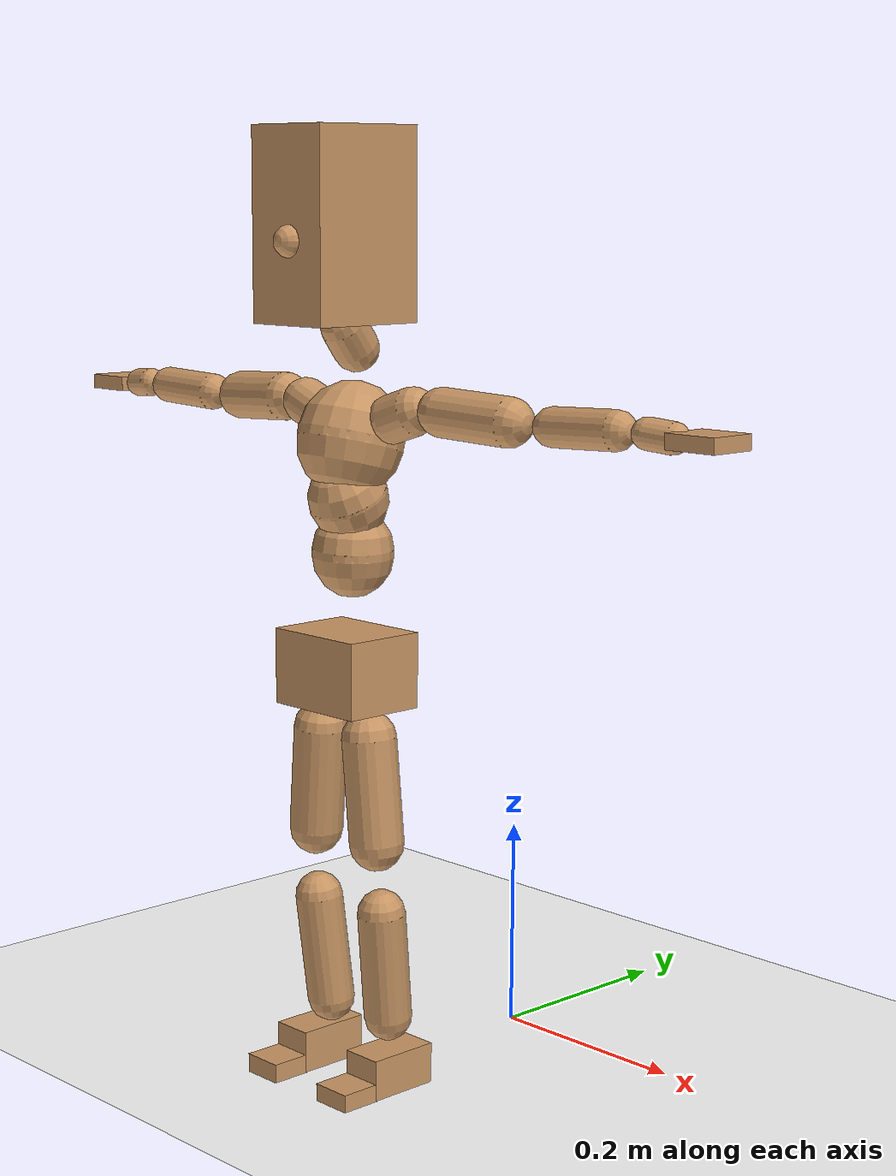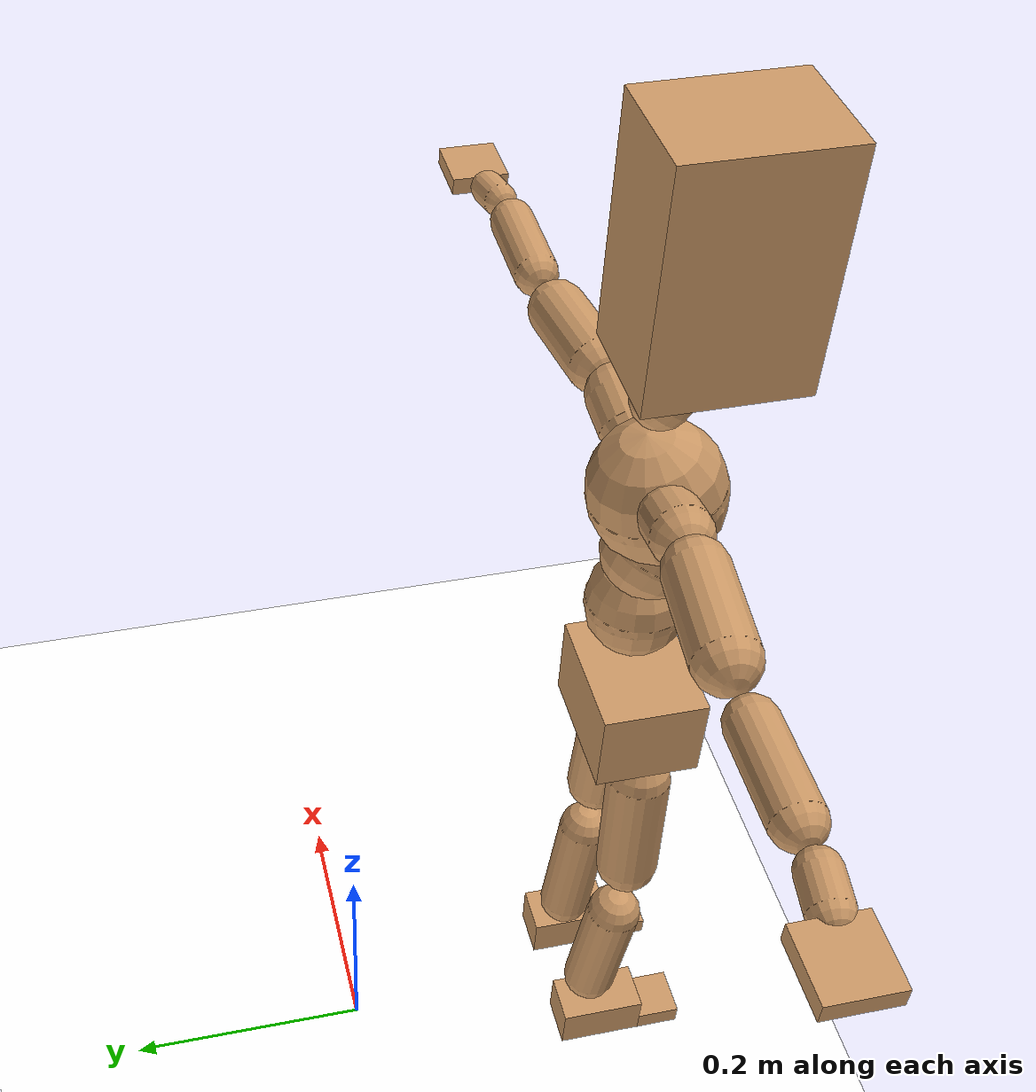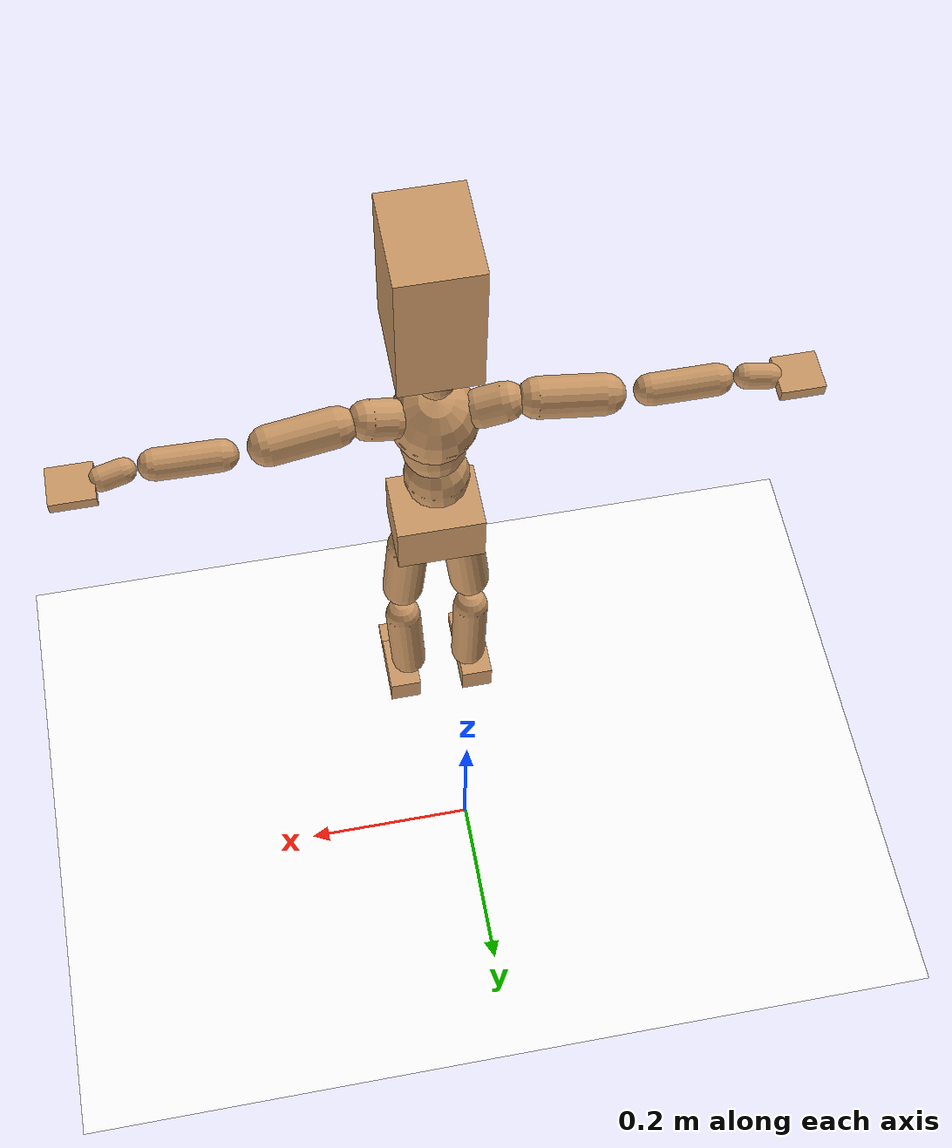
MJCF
<mujoco model="humanoid">
  <option integrator="implicitfast" />

  <visual>
    <global offwidth="1280" offheight="960" />
    <headlight active="1" ambient="0.34 0.34 0.34" diffuse="0.5 0.5 0.5" />
  </visual>

  <default>
    <joint damping="2" stiffness="2" armature="0.01" limited="true" solimplimit="0 .99 .01" />
    <geom condim="1" friction="0.7 0.005 0.0001" solimp=".99 .99 .003" solref="0.015 1" margin="0.001" rgba="0.8 0.6 .4 1" />
    <default class="smplcontact">
      <geom condim="3" friction="1. 0.005 0.0001" solref="0.015 1" solimp="0.98 0.98 0.001" priority="1" />
    </default>
    <default class="stiff_medium">
      <joint stiffness="10" />
    </default>
    <default class="stiff_medium_higher">
      <joint stiffness="50" />
    </default>
    <default class="stiff_high">
      <joint stiffness="100" />
    </default>
  </default>

  <asset>
    <texture type="skybox" builtin="gradient" rgb1="0.99 0.99 0.99" rgb2="0.608 0.828 0.892" width="100" />
    <texture builtin="flat" height="1278" mark="cross" markrgb="1 1 1" name="texgeom" random="0.01" rgb1="0.8 0.6 0.4" rgb2="0.8 0.6 0.4" type="cube" width="127" />
    <texture name="texplane" type="2d" builtin="checker" markrgb="1 1 1" rgb1="0.756 0.772 0.76" rgb2="0.6 0.6 0.6" width="100" height="100" />
    <material name="MatPlane" reflectance="0.5" texture="texplane" texrepeat="1 1" texuniform="true" />
    <material name="geom" texture="texgeom" texuniform="true" />
  </asset>

  <worldbody>
    <light name="tracking_light" pos="0 0 7" dir="0 0 -1" directional="true" cutoff="100" exponent="1" diffuse="1 1 1" specular="0.1 0.1 0.1" mode="trackcom" />
    <camera name="back" pos="0 3 2.4" xyaxes="-1 0 0 0 -1 2" mode="trackcom" />
    <camera name="side" pos="-3 0 2.4" xyaxes="0 -1 0 1 0 2" mode="trackcom" />
    <camera name="front_side" pos="-2.8 -2.8 0.8" xyaxes="0.5 -0.5 0 0.1 0.1 1" mode="trackcom" />
    <geom condim="3" name="floor" pos="0 0 0" rgba="1 1 1 1" size="100 100 .2" type="plane" material="MatPlane" />
    <body name="Pelvis" pos="-0.0018 -0.2233 0.401666" euler="90 0 0">
      <site name="Pelvis" size="0.01" />
      <freejoint name="Pelvis" />
      <geom type="box" pos="-0.0000 -0.0121 -0.0055" size="0.0514157 0.034726 0.0399205" quat="1.0000 0.0000 0.0000 0.0000" density="3165.830099" name="Pelvis" />
      <body name="L_Hip" pos="0.0298351 -0.0392364 -0.00291912">
        <joint name="L_Hip_x" type="hinge" pos="0 0 0" axis="1 0 0" stiffness="10" range="-160.0 22.92" class="stiff_medium" damping="15" />
        <joint name="L_Hip_y" type="hinge" pos="0 0 0" axis="0 1 0" stiffness="10" range="-70.0 70.0" class="stiff_medium" damping="10" />
        <joint name="L_Hip_z" type="hinge" pos="0 0 0" axis="0 0 1" stiffness="10" range="-28.65 90.0" class="stiff_medium" damping="10" />
        <geom type="capsule" density="2040.816327" fromto="0.00296205 -0.0321962 -0.000386354 0.0117623 -0.128871 -0.00154542" size="0.0251391" name="L_Hip" />
        <body name="L_Knee" pos="0.0147244 -0.161067 -0.00193177">
          <joint name="L_Knee_x" type="hinge" pos="0 0 0" axis="1 0 0" range="-5.16 171.89" damping="8" />
          <joint name="L_Knee_y" type="hinge" pos="0 0 0" axis="0 1 0" range="-4.58 6.88" damping="8" />
          <joint name="L_Knee_z" type="hinge" pos="0 0 0" axis="0 0 1" range="-6.88 4.58" damping="8" />
          <geom type="capsule" density="1234.567901" fromto="-0.00115906 -0.0341709 -0.00373476 -0.00467918 -0.136684 -0.0150249" size="0.0221142" name="L_Knee" />
          <body name="L_Ankle" pos="-0.00583824 -0.170855 -0.0187597">
            <joint name="L_Ankle_x" type="hinge" pos="0 0 0" axis="1 0 0" range="-45.84 45.84" class="stiff_medium" damping="6" />
            <joint name="L_Ankle_y" type="hinge" pos="0 0 0" axis="0 1 0" range="-74.48 22.92" class="stiff_medium" damping="3" />
            <joint name="L_Ankle_z" type="hinge" pos="0 0 0" axis="0 0 1" range="-4.58 4.58" class="stiff_medium" damping="6" />
            <geom type="box" pos="0.0100023 -0.0102599 0.0103886" size="0.0197434 0.0189667 0.0347451" quat="1.0000 0.0000 0.0000 0.0000" density="449.071558" name="L_Ankle" class="smplcontact" />
            <body name="L_Toe" pos="0.0113331 -0.023954 0.0512134">
              <joint name="L_Toe_x" type="hinge" pos="0 0 0" axis="1 0 0" range="-91.67 22.92" />
              <joint name="L_Toe_y" type="hinge" pos="0 0 0" axis="0 1 0" range="-4.58 4.58" />
              <joint name="L_Toe_z" type="hinge" pos="0 0 0" axis="0 0 1" range="-4.58 4.58" />
              <geom type="box" pos="-0.00128785 0.00236105 0.0106462" size="0.019539 0.00817531 0.0202748" quat="1.0000 0.0000 0.0000 0.0000" density="423.206892" name="L_Toe" class="smplcontact" />
            </body>
          </body>
        </body>
      </body>
      <body name="R_Hip" pos="-0.0290624 -0.0388501 -0.00184592">
        <joint name="R_Hip_x" type="hinge" pos="0 0 0" axis="1 0 0" stiffness="10" range="-160.0 22.92" class="stiff_medium" damping="15" />
        <joint name="R_Hip_y" type="hinge" pos="0 0 0" axis="0 1 0" stiffness="10" range="-70.0 70.0" class="stiff_medium" damping="10" />
        <joint name="R_Hip_z" type="hinge" pos="0 0 0" axis="0 0 1" stiffness="10" range="-90.0 28.65" class="stiff_medium" damping="10" />
        <geom type="capsule" density="2040.816327" fromto="-0.00330548 -0.0328401 -0.000772709 -0.0131361 -0.131403 -0.00304791" size="0.0247712" name="R_Hip" />
        <body name="R_Knee" pos="-0.0164415 -0.164244 -0.00382062">
          <joint name="R_Knee_x" type="hinge" pos="0 0 0" axis="1 0 0" range="-5.16 171.89" damping="8" />
          <joint name="R_Knee_y" type="hinge" pos="0 0 0" axis="0 1 0" range="-6.88 4.58" damping="8" />
          <joint name="R_Knee_z" type="hinge" pos="0 0 0" axis="0 0 1" range="-4.58 6.88" damping="8" />
          <geom type="capsule" density="1234.567901" fromto="0.0013737 -0.0342138 -0.0036489 0.00540896 -0.136812 -0.0145098" size="0.0221142" name="R_Knee" />
          <body name="R_Ankle" pos="0.00678267 -0.171026 -0.0181587">
            <joint name="R_Ankle_x" type="hinge" pos="0 0 0" axis="1 0 0" range="-45.84 45.84" class="stiff_medium" damping="6" />
            <joint name="R_Ankle_y" type="hinge" pos="0 0 0" axis="0 1 0" range="-22.92 74.48" class="stiff_medium" damping="3" />
            <joint name="R_Ankle_z" type="hinge" pos="0 0 0" axis="0 0 1" range="-4.58 4.58" class="stiff_medium" damping="6" />
            <geom type="box" pos="-0.00910079 -0.00746952 0.0109896" size="0.0197434 0.019539 0.0353582" quat="1.0000 0.0000 0.0000 0.0000" density="434.700981" name="R_Ankle" class="smplcontact" />
            <body name="R_Toe" pos="-0.0109038 -0.0206485 0.0529306">
              <joint name="R_Toe_x" type="hinge" pos="0 0 0" axis="1 0 0" range="-91.67 22.92" />
              <joint name="R_Toe_y" type="hinge" pos="0 0 0" axis="0 1 0" range="-4.58 4.58" />
              <joint name="R_Toe_z" type="hinge" pos="0 0 0" axis="0 0 1" range="-4.58 4.58" />
              <geom type="box" pos="0.00180299 0.00193177 0.00974472" size="0.0195799 0.00882933 0.0201521" quat="1.0000 0.0000 0.0000 0.0000" density="407.384095" name="R_Toe" class="smplcontact" />
            </body>
          </body>
        </body>
      </body>
      <body name="Torso" pos="-0.00131215 0.0572096 -0.0140137">
        <joint name="Torso_x" type="hinge" pos="0 0 0" axis="1 0 0" range="-25.78 57.3" class="stiff_medium" damping="15" />
        <joint name="Torso_y" type="hinge" pos="0 0 0" axis="0 1 0" range="-57.3 57.3" class="stiff_high" damping="20" />
        <joint name="Torso_z" type="hinge" pos="0 0 0" axis="0 0 1" range="-34.38 34.38" class="stiff_high" damping="20" />
        <geom type="capsule" density="2040.816327" fromto="0.00131215 0.0319114 0.000262429 0.00157458 0.038997 0.000314915" size="0.0369866" name="Torso" />
        <body name="Spine" pos="0.00288672 0.0709608 0.000577344">
          <joint name="Spine_x" type="hinge" pos="0 0 0" axis="1 0 0" stiffness="10" range="-25.78 57.3" class="stiff_medium" damping="15" />
          <joint name="Spine_y" type="hinge" pos="0 0 0" axis="0 1 0" stiffness="10" range="-57.3 57.3" class="stiff_high" damping="8" />
          <joint name="Spine_z" type="hinge" pos="0 0 0" axis="0 0 1" stiffness="20" range="-34.38 34.38" class="stiff_high" damping="12" />
          <geom type="capsule" density="2040.816327" fromto="0.000367401 0.0124916 0.00598339 0.000419887 0.0152734 0.00734802" size="0.0363132" name="Spine" />
          <body name="Chest" pos="0.000787288 0.027765 0.0133314">
            <joint name="Chest_x" type="hinge" pos="0 0 0" axis="1 0 0" stiffness="10" range="-25.78 57.3" class="stiff_medium" damping="15" />
            <joint name="Chest_y" type="hinge" pos="0 0 0" axis="0 1 0" stiffness="10" range="-57.3 57.3" class="stiff_high" damping="8" />
            <joint name="Chest_z" type="hinge" pos="0 0 0" axis="0 0 1" stiffness="20" range="-34.38 34.38" class="stiff_high" damping="12" />
            <geom type="capsule" density="2040.816327" fromto="-0.000472373 0.0357953 -0.00908005 -0.000524858 0.0437207 -0.011127" size="0.0481932" name="Chest" />
            <body name="Neck" pos="-0.0014696 0.112267 -0.0225164">
              <joint name="Neck_x" type="hinge" pos="0 0 0" axis="1 0 0" range="-28.65 57.3" class="stiff_medium_higher" damping="10" />
              <joint name="Neck_y" type="hinge" pos="0 0 0" axis="0 1 0" range="-40.11 40.11" class="stiff_medium_higher" damping="10" />
              <joint name="Neck_z" type="hinge" pos="0 0 0" axis="0 0 1" range="-40.11 40.11" class="stiff_medium_higher" damping="10" />
              <geom type="capsule" density="1000" fromto="0.000524858 0.00682316 0.00540604 0.00215192 0.0272926 0.0215717" size="0.0209703" name="Neck" />
              <body name="Head" pos="0.0039195 0.0489937 0.0386674">
                <joint name="Head_x" type="hinge" pos="0 0 0" axis="1 0 0" range="-28.65 57.3" class="stiff_medium_higher" damping="2" />
                <joint name="Head_y" type="hinge" pos="0 0 0" axis="0 1 0" range="-40.11 40.11" class="stiff_medium_higher" damping="2" />
                <joint name="Head_z" type="hinge" pos="0 0 0" axis="0 0 1" range="-40.11 40.11" class="stiff_medium_higher" damping="2" />
                <geom type="box" pos="-0.00316575 0.0660285 -0.0087435" size="0.0446205 0.0849703 0.0559597" quat="1.0000 0.0000 0.0000 0.0000" density="1018.069894" name="Head" />
                <geom type="capsule" name="nose" size="0.0147262 0.00736312" pos="0 0.0527625 0.0376875" quat="1 0 0 0" mass="0" contype="0" conaffinity="0" />
              </body>
            </body>
            <body name="L_Thorax" pos="0.0367615 0.0567751 -0.0159082">
              <joint name="L_Thorax_x" type="hinge" pos="0 0 0" axis="1 0 0" range="-10.89 4.58" class="stiff_medium_higher" damping="20" />
              <joint name="L_Thorax_y" type="hinge" pos="0 0 0" axis="0 1 0" range="-28.65 17.19" class="stiff_medium_higher" damping="20" />
              <joint name="L_Thorax_z" type="hinge" pos="0 0 0" axis="0 0 1" range="-31.51 40.11" class="stiff_medium_higher" damping="20" />
              <geom type="capsule" density="1000" fromto="0.0084906 0.00284575 -0.00083973 0.0339624 0.011383 -0.00331227" size="0.0219902" name="L_Thorax" />
              <body name="L_Shoulder" pos="0.042453 0.0142288 -0.004152">
                <joint name="L_Shoulder_x" type="hinge" pos="0 0 0" axis="1 0 0" range="-97.4 97.4" class="stiff_medium" damping="6" />
                <joint name="L_Shoulder_y" type="hinge" pos="0 0 0" axis="0 1 0" range="-108.86 80.21" class="stiff_medium" damping="6" />
                <joint name="L_Shoulder_z" type="hinge" pos="0 0 0" axis="0 0 1" range="-97.4 85.94" class="stiff_medium" damping="6" />
                <geom type="capsule" density="1000" fromto="0.0242122 -0.00121294 -0.00256584 0.0968955 -0.00475847 -0.0102634" size="0.0218213" name="L_Shoulder" />
                <body name="L_Elbow" pos="0.121108 -0.00597141 -0.0128292">
                  <joint name="L_Elbow_x" type="hinge" pos="0 0 0" axis="1 0 0" range="-17.19 4.58" damping="5" />
                  <joint name="L_Elbow_y" type="hinge" pos="0 0 0" axis="0 1 0" range="-180.0 17.19" damping="5" />
                  <joint name="L_Elbow_z" type="hinge" pos="0 0 0" axis="0 0 1" range="-100.84 4.58" damping="5" />
                  <geom type="capsule" density="1000" fromto="0.0232325 0.00083973 -9.33033e-05 0.0930234 0.00335892 -0.000419865" size="0.0170941" name="L_Elbow" />
                  <body name="L_Wrist" pos="0.116256 0.00419865 -0.00055982">
                    <joint name="L_Wrist_x" type="hinge" pos="0 0 0" axis="1 0 0" range="-180.0 22.92" />
                    <joint name="L_Wrist_y" type="hinge" pos="0 0 0" axis="0 1 0" range="-17.19 17.19" />
                    <joint name="L_Wrist_z" type="hinge" pos="0 0 0" axis="0 0 1" range="-22.92 22.92" />
                    <geom type="capsule" density="1000" fromto="0.00783748 -0.000746426 -0.00139955 0.0313499 -0.00303236 -0.0055982" size="0.013422" name="L_Wrist" class="smplcontact" />
                    <body name="L_Hand" pos="0.0391874 -0.00382544 -0.0069511">
                      <joint name="L_Hand_x" type="hinge" pos="0 0 0" axis="1 0 0" range="-17.19 17.19" />
                      <joint name="L_Hand_y" type="hinge" pos="0 0 0" axis="0 1 0" range="-51.57 51.57" />
                      <joint name="L_Hand_z" type="hinge" pos="0 0 0" axis="0 0 1" range="-91.67 91.67" />
                      <geom type="box" pos="0.0229993 0.000466516 -0.0027058" size="0.0246915 0.0066688 0.0227077" quat="1.0000 0.0000 0.0000 0.0000" density="400.552564" name="L_Hand" class="smplcontact" />
                    </body>
                  </body>
                </body>
              </body>
            </body>
            <body name="R_Thorax" pos="-0.038161 0.0554222 -0.0180075">
              <joint name="R_Thorax_x" type="hinge" pos="0 0 0" axis="1 0 0" range="-10.89 4.58" class="stiff_medium_higher" damping="20" />
              <joint name="R_Thorax_y" type="hinge" pos="0 0 0" axis="0 1 0" range="-17.19 28.65" class="stiff_medium_higher" damping="20" />
              <joint name="R_Thorax_z" type="hinge" pos="0 0 0" axis="0 0 1" range="-40.11 31.51" class="stiff_medium_higher" damping="20" />
              <geom type="capsule" density="1000" fromto="-0.00895712 0.00303236 -0.00083973 -0.0358285 0.0121294 -0.00340557" size="0.0215681" name="R_Thorax" />
              <body name="R_Shoulder" pos="-0.0447856 0.0152084 -0.0042453">
                <joint name="R_Shoulder_x" type="hinge" pos="0 0 0" axis="1 0 0" range="-97.4 97.4" class="stiff_medium" damping="6" />
                <joint name="R_Shoulder_y" type="hinge" pos="0 0 0" axis="0 1 0" range="-80.21 108.86" class="stiff_medium" damping="6" />
                <joint name="R_Shoulder_z" type="hinge" pos="0 0 0" axis="0 0 1" range="-85.94 97.4" class="stiff_medium" damping="6" />
                <geom type="capsule" density="1000" fromto="-0.0236524 -0.00125959 -0.00200602 -0.0947028 -0.00499173 -0.00797743" size="0.0224122" name="R_Shoulder" />
                <body name="R_Elbow" pos="-0.118355 -0.00620467 -0.00998345">
                  <joint name="R_Elbow_x" type="hinge" pos="0 0 0" axis="1 0 0" range="-17.19 4.58" damping="5" />
                  <joint name="R_Elbow_y" type="hinge" pos="0 0 0" axis="0 1 0" range="-17.19 180.0" damping="5" />
                  <joint name="R_Elbow_z" type="hinge" pos="0 0 0" axis="0 0 1" range="-4.58 100.84" damping="5" />
                  <geom type="capsule" density="1000" fromto="-0.023839 0.000746426 -0.000513168 -0.0952627 0.0028924 -0.00205267" size="0.0172207" name="R_Elbow" />
                  <body name="R_Wrist" pos="-0.119102 0.00363883 -0.00261249">
                    <joint name="R_Wrist_x" type="hinge" pos="0 0 0" axis="1 0 0" range="-180.0 22.92" />
                    <joint name="R_Wrist_y" type="hinge" pos="0 0 0" axis="0 1 0" range="-17.19 17.19" />
                    <joint name="R_Wrist_z" type="hinge" pos="0 0 0" axis="0 0 1" range="-22.92 22.92" />
                    <geom type="capsule" density="1000" fromto="-0.00788413 -0.00055982 -0.000979685 -0.0315832 -0.00228593 -0.00387209" size="0.0137597" name="R_Wrist" class="smplcontact" />
                    <body name="R_Hand" pos="-0.0394673 -0.00284575 -0.00480512">
                      <joint name="R_Hand_x" type="hinge" pos="0 0 0" axis="1 0 0" range="-17.19 17.19" />
                      <joint name="R_Hand_y" type="hinge" pos="0 0 0" axis="0 1 0" range="-51.57 51.57" />
                      <joint name="R_Hand_z" type="hinge" pos="0 0 0" axis="0 0 1" range="-91.67 91.67" />
                      <geom type="box" pos="-0.0215531 -0.000419865 -0.00368548" size="0.0240161 0.00692205 0.0230454" quat="1.0000 0.0000 0.0000 0.0000" density="403.679611" name="R_Hand" class="smplcontact" />
                    </body>
                  </body>
                </body>
              </body>
            </body>
          </body>
        </body>
      </body>
    </body>
  </worldbody>
  <actuator>
    <general name="L_Hip_x" joint="L_Hip_x" biastype="affine" gainprm="287.33006409732246" biasprm="-215.3247604770444 -180 -2.0" ctrllimited="true" ctrlrange="-1 1" forcerange="-360 360" />
    <general name="L_Hip_y" joint="L_Hip_y" biastype="affine" gainprm="219.9114857512855" biasprm="0.0 -180 -2.0" ctrllimited="true" ctrlrange="-1 1" forcerange="-360 360" />
    <general name="L_Hip_z" joint="L_Hip_z" biastype="affine" gainprm="186.3749841742145" biasprm="96.3683546488669 -180 -2.0" ctrllimited="true" ctrlrange="-1 1" forcerange="-360 360" />
    <general name="L_Knee_x" joint="L_Knee_x" biastype="affine" gainprm="278.10948965903646" biasprm="261.8988715665131 -180 -2.0" ctrllimited="true" ctrlrange="-1 1" forcerange="-360 360" />
    <general name="L_Knee_y" joint="L_Knee_y" biastype="affine" gainprm="18.001325905069514" biasprm="3.612831551628262 -180 -2.0" ctrllimited="true" ctrlrange="-1 1" forcerange="-360 360" />
    <general name="L_Knee_z" joint="L_Knee_z" biastype="affine" gainprm="18.001325905069514" biasprm="-3.612831551628262 -180 -2.0" ctrllimited="true" ctrlrange="-1 1" forcerange="-360 360" />
    <general name="L_Ankle_x" joint="L_Ankle_x" biastype="affine" gainprm="72.00530362027807" biasprm="0.0 -90 -2.0" ctrllimited="true" ctrlrange="-1 1" forcerange="-180 180" />
    <general name="L_Ankle_y" joint="L_Ankle_y" biastype="affine" gainprm="76.49778111491148" biasprm="-40.49512930477244 -90 -2.0" ctrllimited="true" ctrlrange="-1 1" forcerange="-180 180" />
    <general name="L_Ankle_z" joint="L_Ankle_z" biastype="affine" gainprm="7.1942471767206255" biasprm="0.0 -90 -2.0" ctrllimited="true" ctrlrange="-1 1" forcerange="-180 180" />
    <general name="L_Toe_x" joint="L_Toe_x" biastype="affine" gainprm="71.99902043497087" biasprm="-43.19689898685965 -72 -0.8" ctrllimited="true" ctrlrange="-1 1" forcerange="-144 144" />
    <general name="L_Toe_y" joint="L_Toe_y" biastype="affine" gainprm="5.755397741376501" biasprm="0.0 -72 -0.8" ctrllimited="true" ctrlrange="-1 1" forcerange="-144 144" />
    <general name="L_Toe_z" joint="L_Toe_z" biastype="affine" gainprm="5.755397741376501" biasprm="0.0 -72 -0.8" ctrllimited="true" ctrlrange="-1 1" forcerange="-144 144" />
    <general name="R_Hip_x" joint="R_Hip_x" biastype="affine" gainprm="287.33006409732246" biasprm="-215.3247604770444 -180 -2.0" ctrllimited="true" ctrlrange="-1 1" forcerange="-360 360" />
    <general name="R_Hip_y" joint="R_Hip_y" biastype="affine" gainprm="219.9114857512855" biasprm="0.0 -180 -2.0" ctrllimited="true" ctrlrange="-1 1" forcerange="-360 360" />
    <general name="R_Hip_z" joint="R_Hip_z" biastype="affine" gainprm="186.3749841742145" biasprm="-96.3683546488669 -180 -2.0" ctrllimited="true" ctrlrange="-1 1" forcerange="-360 360" />
    <general name="R_Knee_x" joint="R_Knee_x" biastype="affine" gainprm="278.10948965903646" biasprm="261.8988715665131 -180 -2.0" ctrllimited="true" ctrlrange="-1 1" forcerange="-360 360" />
    <general name="R_Knee_y" joint="R_Knee_y" biastype="affine" gainprm="18.001325905069514" biasprm="-3.612831551628262 -180 -2.0" ctrllimited="true" ctrlrange="-1 1" forcerange="-360 360" />
    <general name="R_Knee_z" joint="R_Knee_z" biastype="affine" gainprm="18.001325905069514" biasprm="3.612831551628262 -180 -2.0" ctrllimited="true" ctrlrange="-1 1" forcerange="-360 360" />
    <general name="R_Ankle_x" joint="R_Ankle_x" biastype="affine" gainprm="72.00530362027807" biasprm="0.0 -90 -2.0" ctrllimited="true" ctrlrange="-1 1" forcerange="-180 180" />
    <general name="R_Ankle_y" joint="R_Ankle_y" biastype="affine" gainprm="76.49778111491148" biasprm="40.49512930477244 -90 -2.0" ctrllimited="true" ctrlrange="-1 1" forcerange="-180 180" />
    <general name="R_Ankle_z" joint="R_Ankle_z" biastype="affine" gainprm="7.1942471767206255" biasprm="0.0 -90 -2.0" ctrllimited="true" ctrlrange="-1 1" forcerange="-180 180" />
    <general name="R_Toe_x" joint="R_Toe_x" biastype="affine" gainprm="71.99902043497087" biasprm="-43.19689898685965 -72 -0.8" ctrllimited="true" ctrlrange="-1 1" forcerange="-144 144" />
    <general name="R_Toe_y" joint="R_Toe_y" biastype="affine" gainprm="5.755397741376501" biasprm="0.0 -72 -0.8" ctrllimited="true" ctrlrange="-1 1" forcerange="-144 144" />
    <general name="R_Toe_z" joint="R_Toe_z" biastype="affine" gainprm="5.755397741376501" biasprm="0.0 -72 -0.8" ctrllimited="true" ctrlrange="-1 1" forcerange="-144 144" />
    <general name="Torso_x" joint="Torso_x" biastype="affine" gainprm="174.00234510682668" biasprm="66.0153336274335 -240 -4.0" ctrllimited="true" ctrlrange="-1 1" forcerange="-360 360" />
    <general name="Torso_y" joint="Torso_y" biastype="affine" gainprm="240.0176787342602" biasprm="0.0 -240 -4.0" ctrllimited="true" ctrlrange="-1 1" forcerange="-360 360" />
    <general name="Torso_z" joint="Torso_z" biastype="affine" gainprm="144.01060724055614" biasprm="0.0 -240 -4.0" ctrllimited="true" ctrlrange="-1 1" forcerange="-360 360" />
    <general name="Spine_x" joint="Spine_x" biastype="affine" gainprm="174.00234510682668" biasprm="66.0153336274335 -240 -4.0" ctrllimited="true" ctrlrange="-1 1" forcerange="-360 360" />
    <general name="Spine_y" joint="Spine_y" biastype="affine" gainprm="240.0176787342602" biasprm="0.0 -240 -4.0" ctrllimited="true" ctrlrange="-1 1" forcerange="-360 360" />
    <general name="Spine_z" joint="Spine_z" biastype="affine" gainprm="144.01060724055614" biasprm="0.0 -240 -4.0" ctrllimited="true" ctrlrange="-1 1" forcerange="-360 360" />
    <general name="Chest_x" joint="Chest_x" biastype="affine" gainprm="174.00234510682668" biasprm="66.0153336274335 -240 -4.0" ctrllimited="true" ctrlrange="-1 1" forcerange="-360 360" />
    <general name="Chest_y" joint="Chest_y" biastype="affine" gainprm="240.0176787342602" biasprm="0.0 -240 -4.0" ctrllimited="true" ctrlrange="-1 1" forcerange="-360 360" />
    <general name="Chest_z" joint="Chest_z" biastype="affine" gainprm="144.01060724055614" biasprm="0.0 -240 -4.0" ctrllimited="true" ctrlrange="-1 1" forcerange="-360 360" />
    <general name="Neck_x" joint="Neck_x" biastype="affine" gainprm="27.00198885760427" biasprm="9.000662952534757 -36 -0.8" ctrllimited="true" ctrlrange="-1 1" forcerange="-72 72" />
    <general name="Neck_y" joint="Neck_y" biastype="affine" gainprm="25.20185626709732" biasprm="0.0 -36 -0.8" ctrllimited="true" ctrlrange="-1 1" forcerange="-72 72" />
    <general name="Neck_z" joint="Neck_z" biastype="affine" gainprm="25.20185626709732" biasprm="0.0 -36 -0.8" ctrllimited="true" ctrlrange="-1 1" forcerange="-72 72" />
    <general name="Head_x" joint="Head_x" biastype="affine" gainprm="18.001325905069514" biasprm="6.000441968356505 -24 -0.8" ctrllimited="true" ctrlrange="-1 1" forcerange="-48 48" />
    <general name="Head_y" joint="Head_y" biastype="affine" gainprm="16.801237511398213" biasprm="0.0 -24 -0.8" ctrllimited="true" ctrlrange="-1 1" forcerange="-48 48" />
    <general name="Head_z" joint="Head_z" biastype="affine" gainprm="16.801237511398213" biasprm="0.0 -24 -0.8" ctrllimited="true" ctrlrange="-1 1" forcerange="-48 48" />
    <general name="L_Thorax_x" joint="L_Thorax_x" biastype="affine" gainprm="16.200146117011364" biasprm="-6.6078165480505335 -120 -1.6" ctrllimited="true" ctrlrange="-1 1" forcerange="-240 240" />
    <general name="L_Thorax_y" joint="L_Thorax_y" biastype="affine" gainprm="48.00353574685204" biasprm="-12.00088393671301 -120 -1.6" ctrllimited="true" ctrlrange="-1 1" forcerange="-240 240" />
    <general name="L_Thorax_z" joint="L_Thorax_z" biastype="affine" gainprm="75.00028861670033" biasprm="9.00589894029074 -120 -1.6" ctrllimited="true" ctrlrange="-1 1" forcerange="-240 240" />
    <general name="L_Shoulder_x" joint="L_Shoulder_x" biastype="affine" gainprm="81.5976331892389" biasprm="0.0 -48 -1.6" ctrllimited="true" ctrlrange="-1 1" forcerange="-96 96" />
    <general name="L_Shoulder_y" joint="L_Shoulder_y" biastype="affine" gainprm="79.19745640189629" biasprm="-12.00088393671301 -48 -1.6" ctrllimited="true" ctrlrange="-1 1" forcerange="-96 96" />
    <general name="L_Shoulder_z" joint="L_Shoulder_z" biastype="affine" gainprm="76.79727961455369" biasprm="-4.800353574685214 -48 -1.6" ctrllimited="true" ctrlrange="-1 1" forcerange="-96 96" />
    <general name="L_Elbow_x" joint="L_Elbow_x" biastype="affine" gainprm="13.67849441372996" biasprm="-7.923096672353461 -72 -0.8" ctrllimited="true" ctrlrange="-1 1" forcerange="-144 144" />
    <general name="L_Elbow_y" joint="L_Elbow_y" biastype="affine" gainprm="123.89813107227425" biasprm="-102.29653998619085 -72 -0.8" ctrllimited="true" ctrlrange="-1 1" forcerange="-144 144" />
    <general name="L_Elbow_z" joint="L_Elbow_z" biastype="affine" gainprm="66.23733950828719" biasprm="-60.4819417669107 -72 -0.8" ctrllimited="true" ctrlrange="-1 1" forcerange="-144 144" />
    <general name="L_Wrist_x" joint="L_Wrist_x" biastype="affine" gainprm="21.24973270888136" biasprm="-16.449379134196157 -12 -0.8" ctrllimited="true" ctrlrange="-1 1" forcerange="-24 24" />
    <general name="L_Wrist_y" joint="L_Wrist_y" biastype="affine" gainprm="3.6002651810139037" biasprm="0.0 -12 -0.8" ctrllimited="true" ctrlrange="-1 1" forcerange="-24 24" />
    <general name="L_Wrist_z" joint="L_Wrist_z" biastype="affine" gainprm="4.800353574685205" biasprm="0.0 -12 -0.8" ctrllimited="true" ctrlrange="-1 1" forcerange="-24 24" />
    <general name="L_Hand_x" joint="L_Hand_x" biastype="affine" gainprm="3.6002651810139037" biasprm="0.0 -12 -0.8" ctrllimited="true" ctrlrange="-1 1" forcerange="-24 24" />
    <general name="L_Hand_y" joint="L_Hand_y" biastype="affine" gainprm="10.800795543041708" biasprm="0.0 -12 -0.8" ctrllimited="true" ctrlrange="-1 1" forcerange="-24 24" />
    <general name="L_Hand_z" joint="L_Hand_z" biastype="affine" gainprm="19.199319903638422" biasprm="0.0 -12 -0.8" ctrllimited="true" ctrlrange="-1 1" forcerange="-24 24" />
    <general name="R_Thorax_x" joint="R_Thorax_x" biastype="affine" gainprm="16.200146117011364" biasprm="-6.6078165480505335 -120 -1.6" ctrllimited="true" ctrlrange="-1 1" forcerange="-240 240" />
    <general name="R_Thorax_y" joint="R_Thorax_y" biastype="affine" gainprm="48.00353574685204" biasprm="12.000883936713002 -120 -1.6" ctrllimited="true" ctrlrange="-1 1" forcerange="-240 240" />
    <general name="R_Thorax_z" joint="R_Thorax_z" biastype="affine" gainprm="75.00028861670033" biasprm="-9.00589894029074 -120 -1.6" ctrllimited="true" ctrlrange="-1 1" forcerange="-240 240" />
    <general name="R_Shoulder_x" joint="R_Shoulder_x" biastype="affine" gainprm="81.5976331892389" biasprm="0.0 -48 -1.6" ctrllimited="true" ctrlrange="-1 1" forcerange="-96 96" />
    <general name="R_Shoulder_y" joint="R_Shoulder_y" biastype="affine" gainprm="79.19745640189629" biasprm="12.00088393671301 -48 -1.6" ctrllimited="true" ctrlrange="-1 1" forcerange="-96 96" />
    <general name="R_Shoulder_z" joint="R_Shoulder_z" biastype="affine" gainprm="76.79727961455369" biasprm="4.800353574685204 -48 -1.6" ctrllimited="true" ctrlrange="-1 1" forcerange="-96 96" />
    <general name="R_Elbow_x" joint="R_Elbow_x" biastype="affine" gainprm="13.67849441372996" biasprm="-7.923096672353461 -72 -0.8" ctrllimited="true" ctrlrange="-1 1" forcerange="-144 144" />
    <general name="R_Elbow_y" joint="R_Elbow_y" biastype="affine" gainprm="123.89813107227425" biasprm="102.29653998619085 -72 -0.8" ctrllimited="true" ctrlrange="-1 1" forcerange="-144 144" />
    <general name="R_Elbow_z" joint="R_Elbow_z" biastype="affine" gainprm="66.23733950828719" biasprm="60.481941766910694 -72 -0.8" ctrllimited="true" ctrlrange="-1 1" forcerange="-144 144" />
    <general name="R_Wrist_x" joint="R_Wrist_x" biastype="affine" gainprm="21.24973270888136" biasprm="-16.449379134196157 -12 -0.8" ctrllimited="true" ctrlrange="-1 1" forcerange="-24 24" />
    <general name="R_Wrist_y" joint="R_Wrist_y" biastype="affine" gainprm="3.6002651810139037" biasprm="0.0 -12 -0.8" ctrllimited="true" ctrlrange="-1 1" forcerange="-24 24" />
    <general name="R_Wrist_z" joint="R_Wrist_z" biastype="affine" gainprm="4.800353574685205" biasprm="0.0 -12 -0.8" ctrllimited="true" ctrlrange="-1 1" forcerange="-24 24" />
    <general name="R_Hand_x" joint="R_Hand_x" biastype="affine" gainprm="3.6002651810139037" biasprm="0.0 -12 -0.8" ctrllimited="true" ctrlrange="-1 1" forcerange="-24 24" />
    <general name="R_Hand_y" joint="R_Hand_y" biastype="affine" gainprm="10.800795543041708" biasprm="0.0 -12 -0.8" ctrllimited="true" ctrlrange="-1 1" forcerange="-24 24" />
    <general name="R_Hand_z" joint="R_Hand_z" biastype="affine" gainprm="19.199319903638422" biasprm="0.0 -12 -0.8" ctrllimited="true" ctrlrange="-1 1" forcerange="-24 24" />
  </actuator>
  <contact>
    <exclude body1="Torso" body2="Chest" />
    <exclude body1="Head" body2="Chest" />
    <exclude body1="R_Knee" body2="R_Toe" />
    <exclude body1="R_Knee" body2="L_Ankle" />
    <exclude body1="R_Knee" body2="L_Toe" />
    <exclude body1="L_Knee" body2="L_Toe" />
    <exclude body1="L_Knee" body2="R_Ankle" />
    <exclude body1="L_Knee" body2="R_Toe" />
    <exclude body1="L_Shoulder" body2="Chest" />
    <exclude body1="R_Shoulder" body2="Chest" />
  </contact>
  <sensor>
    <framelinvel name="sensor_Pelvis_framelinvel" objtype="xbody" objname="Pelvis" />
    <framelinvel name="sensor_L_Hip_framelinvel" objtype="xbody" objname="L_Hip" />
    <framelinvel name="sensor_L_Knee_framelinvel" objtype="xbody" objname="L_Knee" />
    <framelinvel name="sensor_L_Ankle_framelinvel" objtype="xbody" objname="L_Ankle" />
    <framelinvel name="sensor_L_Toe_framelinvel" objtype="xbody" objname="L_Toe" />
    <framelinvel name="sensor_R_Hip_framelinvel" objtype="xbody" objname="R_Hip" />
    <framelinvel name="sensor_R_Knee_framelinvel" objtype="xbody" objname="R_Knee" />
    <framelinvel name="sensor_R_Ankle_framelinvel" objtype="xbody" objname="R_Ankle" />
    <framelinvel name="sensor_R_Toe_framelinvel" objtype="xbody" objname="R_Toe" />
    <framelinvel name="sensor_Torso_framelinvel" objtype="xbody" objname="Torso" />
    <framelinvel name="sensor_Spine_framelinvel" objtype="xbody" objname="Spine" />
    <framelinvel name="sensor_Chest_framelinvel" objtype="xbody" objname="Chest" />
    <framelinvel name="sensor_Neck_framelinvel" objtype="xbody" objname="Neck" />
    <framelinvel name="sensor_Head_framelinvel" objtype="xbody" objname="Head" />
    <framelinvel name="sensor_L_Thorax_framelinvel" objtype="xbody" objname="L_Thorax" />
    <framelinvel name="sensor_L_Shoulder_framelinvel" objtype="xbody" objname="L_Shoulder" />
    <framelinvel name="sensor_L_Elbow_framelinvel" objtype="xbody" objname="L_Elbow" />
    <framelinvel name="sensor_L_Wrist_framelinvel" objtype="xbody" objname="L_Wrist" />
    <framelinvel name="sensor_L_Hand_framelinvel" objtype="xbody" objname="L_Hand" />
    <framelinvel name="sensor_R_Thorax_framelinvel" objtype="xbody" objname="R_Thorax" />
    <framelinvel name="sensor_R_Shoulder_framelinvel" objtype="xbody" objname="R_Shoulder" />
    <framelinvel name="sensor_R_Elbow_framelinvel" objtype="xbody" objname="R_Elbow" />
    <framelinvel name="sensor_R_Wrist_framelinvel" objtype="xbody" objname="R_Wrist" />
    <framelinvel name="sensor_R_Hand_framelinvel" objtype="xbody" objname="R_Hand" />
    <frameangvel name="sensor_Pelvis_frameangvel" objtype="xbody" objname="Pelvis" />
    <frameangvel name="sensor_L_Hip_frameangvel" objtype="xbody" objname="L_Hip" />
    <frameangvel name="sensor_L_Knee_frameangvel" objtype="xbody" objname="L_Knee" />
    <frameangvel name="sensor_L_Ankle_frameangvel" objtype="xbody" objname="L_Ankle" />
    <frameangvel name="sensor_L_Toe_frameangvel" objtype="xbody" objname="L_Toe" />
    <frameangvel name="sensor_R_Hip_frameangvel" objtype="xbody" objname="R_Hip" />
    <frameangvel name="sensor_R_Knee_frameangvel" objtype="xbody" objname="R_Knee" />
    <frameangvel name="sensor_R_Ankle_frameangvel" objtype="xbody" objname="R_Ankle" />
    <frameangvel name="sensor_R_Toe_frameangvel" objtype="xbody" objname="R_Toe" />
    <frameangvel name="sensor_Torso_frameangvel" objtype="xbody" objname="Torso" />
    <frameangvel name="sensor_Spine_frameangvel" objtype="xbody" objname="Spine" />
    <frameangvel name="sensor_Chest_frameangvel" objtype="xbody" objname="Chest" />
    <frameangvel name="sensor_Neck_frameangvel" objtype="xbody" objname="Neck" />
    <frameangvel name="sensor_Head_frameangvel" objtype="xbody" objname="Head" />
    <frameangvel name="sensor_L_Thorax_frameangvel" objtype="xbody" objname="L_Thorax" />
    <frameangvel name="sensor_L_Shoulder_frameangvel" objtype="xbody" objname="L_Shoulder" />
    <frameangvel name="sensor_L_Elbow_frameangvel" objtype="xbody" objname="L_Elbow" />
    <frameangvel name="sensor_L_Wrist_frameangvel" objtype="xbody" objname="L_Wrist" />
    <frameangvel name="sensor_L_Hand_frameangvel" objtype="xbody" objname="L_Hand" />
    <frameangvel name="sensor_R_Thorax_frameangvel" objtype="xbody" objname="R_Thorax" />
    <frameangvel name="sensor_R_Shoulder_frameangvel" objtype="xbody" objname="R_Shoulder" />
    <frameangvel name="sensor_R_Elbow_frameangvel" objtype="xbody" objname="R_Elbow" />
    <frameangvel name="sensor_R_Wrist_frameangvel" objtype="xbody" objname="R_Wrist" />
    <frameangvel name="sensor_R_Hand_frameangvel" objtype="xbody" objname="R_Hand" />
    <subtreelinvel name="Chest_subtreelinvel" body="Chest" />
    <gyro name="Pelvis_gyro" site="Pelvis" />
  </sensor>
</mujoco>
